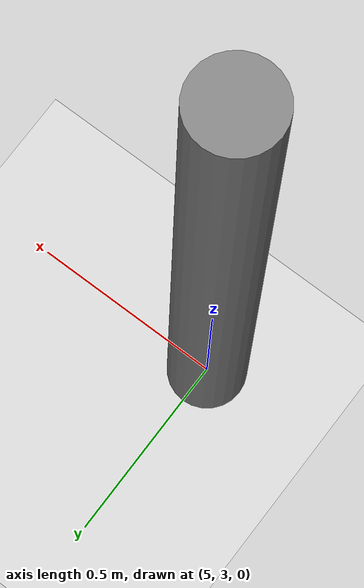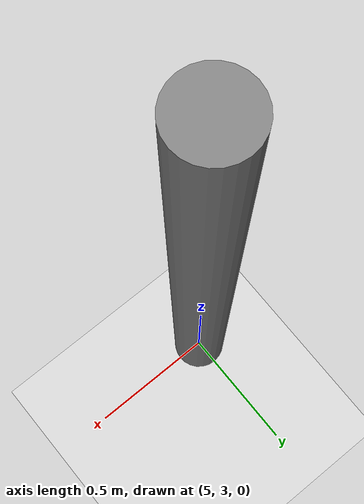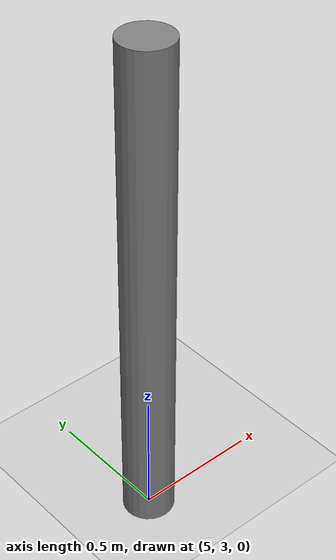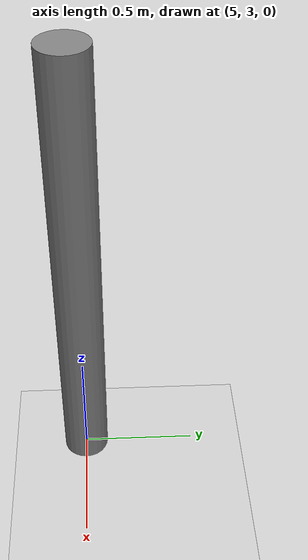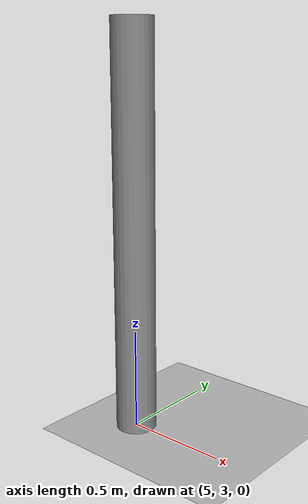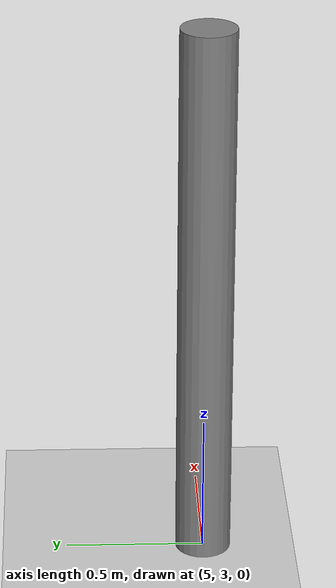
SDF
<?xml version="1.0" encoding="UTF-8"?>
<sdf version="1.8">
  <world name="single_pillar">
    <physics name="1ms" type="ignored">
      <max_step_size>0.01</max_step_size>
      <real_time_factor>1.0</real_time_factor>
    </physics>

    <plugin filename="libignition-gazebo-physics-system.so" name="ignition::gazebo::systems::Physics" />
    <plugin filename="libignition-gazebo-user-commands-system.so" name="ignition::gazebo::systems::UserCommands" />
    <plugin filename="libignition-gazebo-scene-broadcaster-system.so" name="ignition::gazebo::systems::SceneBroadcaster" />
    <plugin filename="libignition-gazebo-imu-system.so" name="ignition::gazebo::systems::Imu" />

    <plugin filename="libignition-gazebo-sensors-system.so" name="ignition::gazebo::systems::Sensors">
      <render_engine>ogre2</render_engine>
    </plugin>

    <light type="directional" name="sun">
      <cast_shadows>true</cast_shadows>
      <pose>0 0 10 0 0 0</pose>
      <diffuse>0.8 0.8 0.8 1</diffuse>
      <specular>0.2 0.2 0.2 1</specular>

      <attenuation>
        <range>1000</range>
        <constant>0.9</constant>
        <linear>0.01</linear>
        <quadratic>0.001</quadratic>
      </attenuation>

      <direction>-0.5 0.1 -0.9</direction>
    </light>

    <model name="ground_plane">
      <static>true</static>

      <link name="link">
        <collision name="collision">
          <geometry>
            <plane>
              <normal>0 0 1</normal>
            </plane>
          </geometry>
        </collision>

        <visual name="visual">
          <geometry>
            <plane>
              <normal>0 0 1</normal>
              <size>100 100</size>
            </plane>
          </geometry>

          <material>
            <ambient>0.8 0.8 0.8 1</ambient>
            <diffuse>0.8 0.8 0.8 1</diffuse>
            <specular>0.8 0.8 0.8 1</specular>
          </material>
        </visual>
      </link>
    </model>

    <model name="pillar">
      <pose>5 3 0 0 0 0</pose>

      <link name="link">
        <pose>0 0 1 0 0 0</pose>

        <inertial>
          <mass>5</mass>

          <inertia>
              <ixx>1.679167</ixx>
              <ixy>0</ixy>
              <ixz>0</ixz>
              <iyy>1.679167</iyy>
              <iyz>0</iyz>
              <izz>0.025</izz>
          </inertia>
        </inertial>

        <collision name="collision">
          <geometry>
            <cylinder>
              <radius>0.1</radius>
              <length>2</length>
            </cylinder>
          </geometry>
        </collision>

        <visual name="visual">
          <geometry>
            <cylinder>
              <radius>0.1</radius>
              <length>2</length>
            </cylinder>
          </geometry>

          <material>
            <ambient>0.5 0.5 0.5 1</ambient>
            <diffuse>0.5 0.5 0.5 1</diffuse>
            <specular>0.5 0.5 0.5 1</specular>
          </material>
        </visual>
      </link>
    </model>
  </world>
</sdf>
